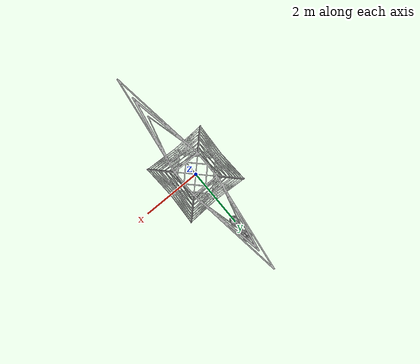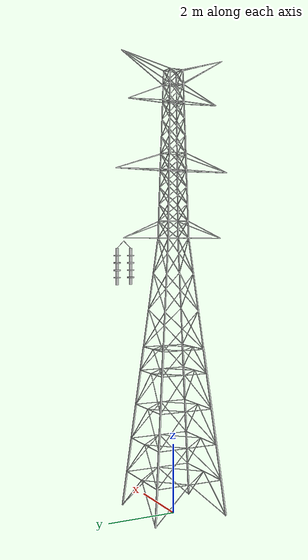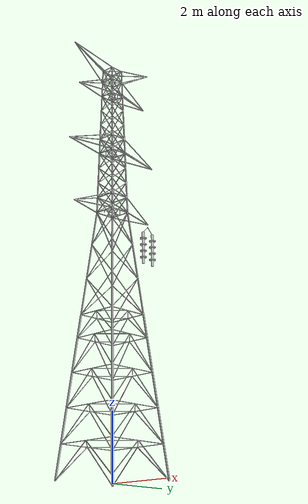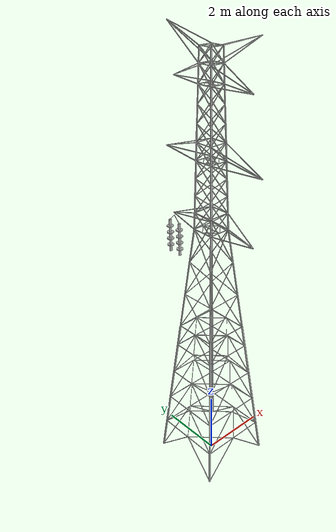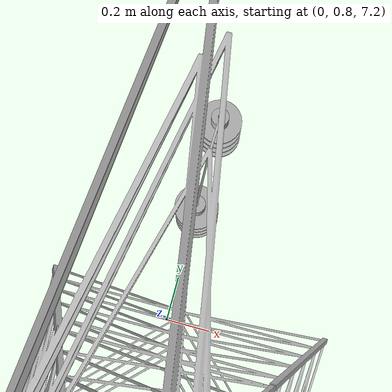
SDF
<?xml version='1.0'?>
<sdf version="1.4">
	<model name="Torre">
		<static>false</static>
		<self_collide>false</self_collide>
		<link name="link_torre">
  			<pose>0 0 0.1 0 0 0</pose>
			<visual name="visual_torre">
				<geometry>
        			<mesh>
          				<uri>model://Torre/meshes/Torre.stl</uri>
          				<scale>20 20 20</scale>
        			</mesh>
      			</geometry>
			</visual>

			<collision name="collision_torre">
				<pose>0 0 6.5 0 0 0</pose>
				<geometry>
					<box>
		            	<size>1 1 13</size>
		        	</box>
		        </geometry>
			</collision>
			<inertial>
				<mass>5000</mass>
				<inertia>
			        <ixx>1</ixx>
			        <iyy>1</iyy>
			        <izz>1</izz>
			    </inertia>
			</inertial>
		</link>

		<joint name="joint_suelo" type="fixed">
			<parent>world</parent>
			<child>link_torre</child>
		</joint>

		<include>
			<uri>model://Apoyo_cables</uri>
			<pose>0 1.52 7.8 0 1.5707963267948966 0</pose>
			<name>apoyo_0_0</name>
		</include>

		<joint name="joint_apoyo_0_0" type="fixed">
			<child>apoyo_0_0::bola_central</child>
			<parent>world</parent>
		</joint>
	</model>
</sdf>

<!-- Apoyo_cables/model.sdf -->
<sdf version="1.4">
	<model name="apoyo">
		<static>false</static>
		<self_collide>false</self_collide>
		<pose>0 0 2 0 0 0</pose>
		<link name="bola_central">
			<visual name="visual">
				<geometry>
        			<sphere>
          				<radius>0.01</radius>
        			</sphere>
      			</geometry>
			</visual>

			<collision name="collision">
				<geometry>
        			<sphere>
          				<radius>0.01</radius>
        			</sphere>
      			</geometry>
			</collision>
		</link>

		<link name="palo_0">
			<pose>0.10 0.10 0 0 0 0.7853981633974483</pose>
			<visual name="visual">
				<geometry>
					<box>
						<size>0.2828 0.01 0.01</size>
					</box>
				</geometry>
			</visual>

 			<collision name="collision">
				<geometry>
					<box>
						<size>0.2828 0.01 0.01</size>
					</box>
				</geometry>
			</collision>
		</link>

		<joint name="bola_central_palo_0" type="fixed">
			<parent>bola_central</parent>
			<child>palo_0</child>
		</joint>

		<link name="bola_borde_0">
			<pose>0.2  0.2 0 0 0 0</pose>
			<visual name="visual">
				<geometry>
        			<sphere>
          				<radius>0.01</radius>
        			</sphere>
      			</geometry>
			</visual>

			<collision name="collision">
				<geometry>
        			<sphere>
          				<radius>0.01</radius>
        			</sphere>
      			</geometry>
			</collision>
		</link>

		<joint name="bola_borde_0_palo_0" type="fixed">
			<parent>bola_borde_0</parent>
			<child>palo_0</child>
		</joint> -->

		<include>
			<uri>model://Aislador</uri>
			<name>Aislador_0</name>
			<pose>0.2  0.2 0 0 -1.5707963267948966 0</pose>
		</include>

		<joint name="joint_aislador_0" type="fixed">
			<child>Aislador_0::aislador</child>
			<parent>bola_borde_0</parent>
		</joint>

		<link name="palo_1">
			<pose>0.10 -0.10 0 0 0 -0.7853981633974483</pose>
			<visual name="visual">
				<geometry>
					<box>
						<size>0.2828 0.01 0.01</size>
					</box>
				</geometry>
			</visual>

 			<collision name="collision">
				<geometry>
					<box>
						<size>0.2828 0.01 0.01</size>
					</box>
				</geometry>
			</collision>
		</link>

		<joint name="bola_central_palo_1" type="fixed">
			<parent>bola_central</parent>
			<child>palo_1</child>
		</joint>

		<link name="bola_borde_1">
			<pose>0.2 -0.2 0 0 0 0</pose>
			<visual name="visual">
				<geometry>
        			<sphere>
          				<radius>0.01</radius>
        			</sphere>
      			</geometry>
			</visual>

			<collision name="collision">
				<geometry>
        			<sphere>
          				<radius>0.01</radius>
        			</sphere>
      			</geometry>
			</collision>
		</link>

		<joint name="bola_borde_1_palo_1" type="fixed">
			<parent>bola_borde_1</parent>
			<child>palo_1</child>
		</joint> -->

		<include>
			<uri>model://Aislador</uri>
			<name>Aislador_1</name>
			<pose>0.2 -0.2 0 0 -1.5707963267948966 0</pose>
		</include>

		<joint name="joint_aislador_1" type="fixed">
			<child>Aislador_1::aislador</child>
			<parent>bola_borde_1</parent>
		</joint>

	</model>
</sdf>

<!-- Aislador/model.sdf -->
<sdf version='1.6'>
	<model name='Aislador'>
		<self_collide>false</self_collide>
		<link name='aislador'>
			<visual name = "visual_palo">
				<pose>0 0 -0.5 0 0 0</pose>
				<geometry>
					<cylinder>
						<radius>0.04</radius>
						<length>1</length>
					</cylinder>
				</geometry>
			</visual>
			<collision name = "collision_palo">
				<pose>0 0 -0.5 0 0 0</pose>
				<geometry>
					<cylinder>
						<radius>0.04</radius>
						<length>1</length>
					</cylinder>
				</geometry>
			</collision>

			<visual name='visual_cilindro_1'>
				<pose>0 0 -0.2 0 0 0</pose>
		        <geometry>
			        <cylinder>
			            <radius>0.1</radius>
			            <length>0.03</length>
			        </cylinder>
		        </geometry>
      		</visual>
      		<collision name='visual_cilindro_1'>
      			<pose>0 0 -0.2 0 0 0</pose>
        		<geometry>
          			<cylinder>
			            <radius>0.1</radius>
			            <length>0.03</length>
          			</cylinder>
        		</geometry>
      		</collision>

			<visual name='visual_cilindro_2'>
				<pose>0 0 -0.4 0 0 0</pose>
		        <geometry>
			        <cylinder>
			            <radius>0.1</radius>
			            <length>0.03</length>
			        </cylinder>
		        </geometry>
      		</visual>
      		<collision name='visual_cilindro_2'>
      			<pose>0 0 -0.4 0 0 0</pose>
        		<geometry>
          			<cylinder>
			            <radius>0.1</radius>
			            <length>0.03</length>
          			</cylinder>
        		</geometry>
      		</collision>

			<visual name='visual_cilindro_3'>
				<pose>0 0 -0.6000000000000001 0 0 0</pose>
		        <geometry>
			        <cylinder>
			            <radius>0.1</radius>
			            <length>0.03</length>
			        </cylinder>
		        </geometry>
      		</visual>
      		<collision name='visual_cilindro_3'>
      			<pose>0 0 -0.6000000000000001 0 0 0</pose>
        		<geometry>
          			<cylinder>
			            <radius>0.1</radius>
			            <length>0.03</length>
          			</cylinder>
        		</geometry>
      		</collision>

			<visual name='visual_cilindro_4'>
				<pose>0 0 -0.8 0 0 0</pose>
		        <geometry>
			        <cylinder>
			            <radius>0.1</radius>
			            <length>0.03</length>
			        </cylinder>
		        </geometry>
      		</visual>
      		<collision name='visual_cilindro_4'>
      			<pose>0 0 -0.8 0 0 0</pose>
        		<geometry>
          			<cylinder>
			            <radius>0.1</radius>
			            <length>0.03</length>
          			</cylinder>
        		</geometry>
      		</collision>

			<inertial>
				<pose>0 0 -0.5 0 0 0</pose>
				<mass>1</mass>
				<inertia>
			        <ixx>1</ixx>
			        <iyy>1</iyy>
			        <izz>1</izz>
			    </inertia>
			</inertial>
		</link>
  	</model>
</sdf>
